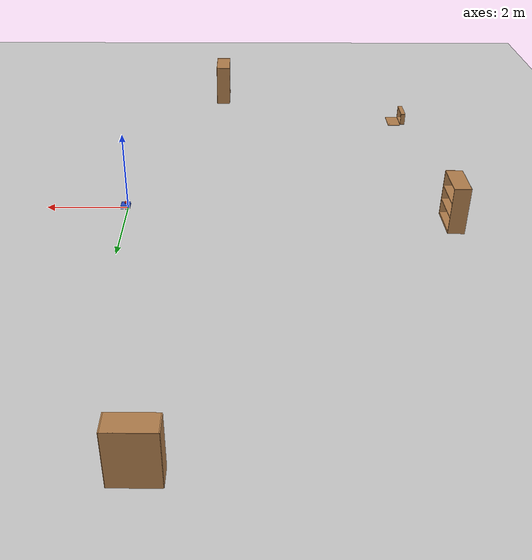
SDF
<sdf version="1.7">
 <world name="default">
  <model name="ground_plane">
   <static>1</static>
   <link name="link">
    <collision name="collision">
     <geometry><plane><normal>0 0 1</normal><size>100 100</size></plane></geometry>
     <surface>
      <contact><collide_bitmask>65535</collide_bitmask></contact>
      <friction><ode><mu>100</mu><mu2>50</mu2></ode></friction>
     </surface>
    </collision>
    <visual name="visual">
     <cast_shadows>0</cast_shadows>
     <geometry><plane><normal>0 0 1</normal><size>100 100</size></plane></geometry>
     <material>
      <script><uri>file://media/materials/scripts/gazebo.material</uri><name>Gazebo/Grey</name></script>
     </material>
    </visual>
   </link>
  </model>
  <model name="my_bot">
   <link name="base_link">
    <inertial>
     <pose>0.058676 0 0.043869 0 -0 0</pose>
     <mass>0.701</mass>
     <inertia>
      <ixx>0.00324724</ixx>
      <ixy>0</ixy>
      <ixz>0.000339625</ixz>
      <iyy>0.00355537</iyy>
      <iyz>0</iyz>
      <izz>0.00467089</izz>
     </inertia>
    </inertial>
    <collision name="base_link_fixed_joint_lump__chassis_collision">
     <pose>0.05251 0 0.037505 0 -0 0</pose>
     <geometry><box><size>0.225 0.225 0.07501</size></box></geometry>
    </collision>
    <collision name="base_link_fixed_joint_lump__caster_wheel_collision_1">
     <pose>0.10876 0 0 0 -0 0</pose>
     <geometry><sphere><radius>0.04</radius></sphere></geometry>
     <surface><friction><ode><mu>0.001</mu><mu2>0.001</mu2></ode></friction></surface>
    </collision>
    <collision name="base_link_fixed_joint_lump__laser_frame_collision_2">
     <pose>0.04001 0 0.12 0 -0 0</pose>
     <geometry><cylinder><length>0.025</length><radius>0.04</radius></cylinder></geometry>
    </collision>
    <collision name="base_link_fixed_joint_lump__imu_link_collision_3">
     <geometry><box><size>0.001 0.001 0.001</size></box></geometry>
    </collision>
    <visual name="base_link_fixed_joint_lump__chassis_visual">
     <pose>0.05251 0 0.037505 0 -0 0</pose>
     <geometry><box><size>0.225 0.225 0.07501</size></box></geometry>
     <material>
      <script><name>Gazebo/Blue</name><uri>file://media/materials/scripts/gazebo.material</uri></script>
     </material>
    </visual>
    <visual name="base_link_fixed_joint_lump__camera_link_visual_1">
     <pose>0.14001 0 0.10285 0 -0 0</pose>
     <geometry><box><size>0.005 0.025 0.025</size></box></geometry>
     <material>
      <script><name>Gazebo/Green</name><uri>file://media/materials/scripts/gazebo.material</uri></script>
     </material>
    </visual>
    <visual name="base_link_fixed_joint_lump__caster_wheel_visual_2">
     <pose>0.10876 0 0 0 -0 0</pose>
     <geometry><sphere><radius>0.04</radius></sphere></geometry>
     <material>
      <script><name>Gazebo/White</name><uri>file://media/materials/scripts/gazebo.material</uri></script>
     </material>
    </visual>
    <visual name="base_link_fixed_joint_lump__laser_frame_visual_3">
     <pose>0.04001 0 0.12 0 -0 0</pose>
     <geometry><cylinder><length>0.025</length><radius>0.04</radius></cylinder></geometry>
     <material>
      <script><name>Gazebo/Red</name><uri>file://media/materials/scripts/gazebo.material</uri></script>
     </material>
    </visual>
    <visual name="base_link_fixed_joint_lump__imu_link_visual_4">
     <geometry><box><size>0.001 0.001 0.001</size></box></geometry>
    </visual>
    <sensor name="camera" type="camera">
     <visualize>1</visualize>
     <update_rate>10</update_rate>
     <camera>
      <horizontal_fov>1.089</horizontal_fov>
      <image><format>R8G8B8</format><width>640</width><height>480</height></image>
      <clip><near>0.05</near><far>8</far></clip>
     </camera>
     <plugin name="camera_controller" filename="libgazebo_ros_camera.so">
      <frame_name>camera_link_optical</frame_name>
     </plugin>
     <pose>0.14001 0 0.10285 0 -0 0</pose>
    </sensor>
    <sensor name="laser" type="ray">
     <visualize>0</visualize>
     <update_rate>10</update_rate>
     <ray>
      <scan>
       <horizontal>
        <samples>360</samples>
        <min_angle>-3.14</min_angle>
        <max_angle>3.14</max_angle>
        <resolution>1</resolution>
       </horizontal>
       <vertical><samples>1</samples><min_angle>0</min_angle><max_angle>0</max_angle></vertical>
      </scan>
      <range><min>0.3</min><max>12</max></range>
     </ray>
     <plugin name="laser_controller" filename="libgazebo_ros_ray_sensor.so">
      <ros><argument>~/out:=scan</argument></ros>
      <output_type>sensor_msgs/LaserScan</output_type>
      <frame_name>laser_frame</frame_name>
     </plugin>
     <pose>0.04001 0 0.12 0 -0 0</pose>
    </sensor>
    <sensor name="imu_sensor" type="imu">
     <plugin name="imu_plugin" filename="libgazebo_ros_imu_sensor.so">
      <initial_orientation_as_reference>0</initial_orientation_as_reference>
      <frame_name>imu_link</frame_name>
      <ros><namespace>/imu</namespace><remapping>~/out:=data</remapping></ros>
     </plugin>
     <always_on>1</always_on>
     <update_rate>100</update_rate>
     <visualize>1</visualize>
     <imu>
      <angular_velocity>
       <x>
        <noise type="gaussian">
         <mean>0</mean>
         <stddev>0.0002</stddev>
         <bias_mean>7.5e-06</bias_mean>
         <bias_stddev>8e-07</bias_stddev>
        </noise>
       </x>
       <y>
        <noise type="gaussian">
         <mean>0</mean>
         <stddev>0.0002</stddev>
         <bias_mean>7.5e-06</bias_mean>
         <bias_stddev>8e-07</bias_stddev>
        </noise>
       </y>
       <z>
        <noise type="gaussian">
         <mean>0</mean>
         <stddev>0.0002</stddev>
         <bias_mean>7.5e-06</bias_mean>
         <bias_stddev>8e-07</bias_stddev>
        </noise>
       </z>
      </angular_velocity>
      <linear_acceleration>
       <x>
        <noise type="gaussian">
         <mean>0</mean>
         <stddev>0.017</stddev>
         <bias_mean>0.1</bias_mean>
         <bias_stddev>0.001</bias_stddev>
        </noise>
       </x>
       <y>
        <noise type="gaussian">
         <mean>0</mean>
         <stddev>0.017</stddev>
         <bias_mean>0.1</bias_mean>
         <bias_stddev>0.001</bias_stddev>
        </noise>
       </y>
       <z>
        <noise type="gaussian">
         <mean>0</mean>
         <stddev>0.017</stddev>
         <bias_mean>0.1</bias_mean>
         <bias_stddev>0.001</bias_stddev>
        </noise>
       </z>
      </linear_acceleration>
     </imu>
    </sensor>
   </link>
   <joint name="left_wheel_joint" type="revolute">
    <pose relative_to="base_link">0 0.11975 0 -1.5708 0 0</pose>
    <parent>base_link</parent>
    <child>left_wheel</child>
    <axis>
     <xyz>0 0 1</xyz>
     <limit><lower>-1e+16</lower><upper>1e+16</upper></limit>
     <dynamics><spring_reference>0</spring_reference><spring_stiffness>0</spring_stiffness></dynamics>
    </axis>
   </joint>
   <link name="left_wheel">
    <pose relative_to="left_wheel_joint">0 0 0 0 -0 0</pose>
    <inertial>
     <mass>0.1</mass>
     <inertia>
      <ixx>4.08333e-05</ixx>
      <ixy>0</ixy>
      <ixz>0</ixz>
      <iyy>4.08333e-05</iyy>
      <iyz>0</iyz>
      <izz>8e-05</izz>
     </inertia>
    </inertial>
    <collision name="left_wheel_collision">
     <geometry><cylinder><length>0.01</length><radius>0.04</radius></cylinder></geometry>
    </collision>
    <visual name="left_wheel_visual">
     <geometry><cylinder><length>0.01</length><radius>0.04</radius></cylinder></geometry>
     <material>
      <script><name>Gazebo/Black</name><uri>file://media/materials/scripts/gazebo.material</uri></script>
     </material>
    </visual>
   </link>
   <joint name="right_wheel_joint" type="revolute">
    <pose relative_to="base_link">0 -0.11975 0 1.5708 -0 0</pose>
    <parent>base_link</parent>
    <child>right_wheel</child>
    <axis>
     <xyz>0 0 -1</xyz>
     <limit><lower>-1e+16</lower><upper>1e+16</upper></limit>
     <dynamics><spring_reference>0</spring_reference><spring_stiffness>0</spring_stiffness></dynamics>
    </axis>
   </joint>
   <link name="right_wheel">
    <pose relative_to="right_wheel_joint">0 0 0 0 -0 0</pose>
    <inertial>
     <mass>0.1</mass>
     <inertia>
      <ixx>4.08333e-05</ixx>
      <ixy>0</ixy>
      <ixz>0</ixz>
      <iyy>4.08333e-05</iyy>
      <iyz>0</iyz>
      <izz>8e-05</izz>
     </inertia>
    </inertial>
    <collision name="right_wheel_collision">
     <geometry><cylinder><length>0.01</length><radius>0.04</radius></cylinder></geometry>
    </collision>
    <visual name="right_wheel_visual">
     <geometry><cylinder><length>0.01</length><radius>0.04</radius></cylinder></geometry>
     <material>
      <script><name>Gazebo/Black</name><uri>file://media/materials/scripts/gazebo.material</uri></script>
     </material>
    </visual>
   </link>
   <static>0</static>
   <plugin name="gazebo_ros2_control" filename="libgazebo_ros2_control.so">
    <parameters>/home/praveenrav702/comp_ws/install/autonomous_diffdrive_robot/share/autonomous_diffdrive_robot/config/my_controllers.yaml</parameters>
    <parameters>/home/praveenrav702/comp_ws/install/autonomous_diffdrive_robot/share/autonomous_diffdrive_robot/config/gaz_ros2_ctl_use_sim.yaml</parameters>
   </plugin>
   <pose>0.002327 0.00019 0.04 0 -0 0.021184</pose>
  </model>
  <model name="Bookshelf">
   <static>1</static>
   <link name="link">
    <inertial><mass>1</mass></inertial>
    <collision name="back">
     <pose>0 0.005 0.6 0 -0 0</pose>
     <geometry><box><size>0.9 0.01 1.2</size></box></geometry>
    </collision>
    <visual name="visual1">
     <pose>0 0.005 0.6 0 -0 0</pose>
     <geometry><box><size>0.9 0.01 1.2</size></box></geometry>
     <material>
      <diffuse>1 1 1 1</diffuse>
      <script><uri>file://media/materials/scripts/gazebo.material</uri><name>Gazebo/Wood</name></script>
      <pbr>
       <metal>
        <albedo_map>https://fuel.ignitionrobotics.org/1.0/openrobotics/models/bookshelf/3/files/bookshelf_diffuse.jpg</albedo_map>
       </metal>
      </pbr>
     </material>
    </visual>
    <collision name="left_side">
     <pose>0.45 -0.195 0.6 0 -0 0</pose>
     <geometry><box><size>0.02 0.4 1.2</size></box></geometry>
    </collision>
    <visual name="visual2">
     <pose>0.45 -0.195 0.6 0 -0 0</pose>
     <geometry><box><size>0.02 0.4 1.2</size></box></geometry>
     <material>
      <diffuse>1 1 1 1</diffuse>
      <script><uri>file://media/materials/scripts/gazebo.material</uri><name>Gazebo/Wood</name></script>
      <pbr>
       <metal>
        <albedo_map>https://fuel.ignitionrobotics.org/1.0/openrobotics/models/bookshelf/3/files/bookshelf_diffuse.jpg</albedo_map>
       </metal>
      </pbr>
     </material>
    </visual>
    <collision name="right_side">
     <pose>-0.45 -0.195 0.6 0 -0 0</pose>
     <geometry><box><size>0.02 0.4 1.2</size></box></geometry>
    </collision>
    <visual name="visual3">
     <pose>-0.45 -0.195 0.6 0 -0 0</pose>
     <geometry><box><size>0.02 0.4 1.2</size></box></geometry>
     <material>
      <diffuse>1 1 1 1</diffuse>
      <script><uri>file://media/materials/scripts/gazebo.material</uri><name>Gazebo/Wood</name></script>
      <pbr>
       <metal>
        <albedo_map>https://fuel.ignitionrobotics.org/1.0/openrobotics/models/bookshelf/3/files/bookshelf_diffuse.jpg</albedo_map>
       </metal>
      </pbr>
     </material>
    </visual>
    <collision name="bottom">
     <pose>0 -0.195 0.03 0 -0 0</pose>
     <geometry><box><size>0.88 0.4 0.06</size></box></geometry>
    </collision>
    <visual name="visual4">
     <pose>0 -0.195 0.03 0 -0 0</pose>
     <geometry><box><size>0.88 0.4 0.06</size></box></geometry>
     <material>
      <diffuse>1 1 1 1</diffuse>
      <script><uri>file://media/materials/scripts/gazebo.material</uri><name>Gazebo/Wood</name></script>
      <pbr>
       <metal>
        <albedo_map>https://fuel.ignitionrobotics.org/1.0/openrobotics/models/bookshelf/3/files/bookshelf_diffuse.jpg</albedo_map>
       </metal>
      </pbr>
     </material>
    </visual>
    <collision name="top">
     <pose>0 -0.195 1.19 0 -0 0</pose>
     <geometry><box><size>0.88 0.4 0.02</size></box></geometry>
    </collision>
    <visual name="visual5">
     <pose>0 -0.195 1.19 0 -0 0</pose>
     <geometry><box><size>0.88 0.4 0.02</size></box></geometry>
     <material>
      <diffuse>1 1 1 1</diffuse>
      <script><uri>file://media/materials/scripts/gazebo.material</uri><name>Gazebo/Wood</name></script>
      <pbr>
       <metal>
        <albedo_map>https://fuel.ignitionrobotics.org/1.0/openrobotics/models/bookshelf/3/files/bookshelf_diffuse.jpg</albedo_map>
       </metal>
      </pbr>
     </material>
    </visual>
    <collision name="low_shelf">
     <pose>0 -0.195 0.43 0 -0 0</pose>
     <geometry><box><size>0.88 0.4 0.02</size></box></geometry>
    </collision>
    <visual name="visual6">
     <pose>0 -0.195 0.43 0 -0 0</pose>
     <geometry><box><size>0.88 0.4 0.02</size></box></geometry>
     <material>
      <diffuse>1 1 1 1</diffuse>
      <script><uri>file://media/materials/scripts/gazebo.material</uri><name>Gazebo/Wood</name></script>
      <pbr>
       <metal>
        <albedo_map>https://fuel.ignitionrobotics.org/1.0/openrobotics/models/bookshelf/3/files/bookshelf_diffuse.jpg</albedo_map>
       </metal>
      </pbr>
     </material>
    </visual>
    <collision name="high_shelf">
     <pose>0 -0.195 0.8 0 -0 0</pose>
     <geometry><box><size>0.88 0.4 0.02</size></box></geometry>
    </collision>
    <visual name="visual7">
     <pose>0 -0.195 0.8 0 -0 0</pose>
     <geometry><box><size>0.88 0.4 0.02</size></box></geometry>
     <material>
      <diffuse>1 1 1 1</diffuse>
      <script><uri>file://media/materials/scripts/gazebo.material</uri><name>Gazebo/Wood</name></script>
      <pbr>
       <metal>
        <albedo_map>https://fuel.ignitionrobotics.org/1.0/openrobotics/models/bookshelf/3/files/bookshelf_diffuse.jpg</albedo_map>
       </metal>
      </pbr>
     </material>
    </visual>
   </link>
   <pose>-2 -7 0 0 0 -1.57079</pose>
  </model>
  <model name="bookshelf">
   <static>1</static>
   <link name="link">
    <inertial><mass>1</mass></inertial>
    <collision name="back">
     <pose>0 0.005 0.6 0 -0 0</pose>
     <geometry><box><size>0.9 0.01 1.2</size></box></geometry>
    </collision>
    <visual name="visual1">
     <pose>0 0.005 0.6 0 -0 0</pose>
     <geometry><box><size>0.9 0.01 1.2</size></box></geometry>
     <material>
      <script><uri>file://media/materials/scripts/gazebo.material</uri><name>Gazebo/Wood</name></script>
     </material>
    </visual>
    <collision name="left_side">
     <pose>0.45 -0.195 0.6 0 -0 0</pose>
     <geometry><box><size>0.02 0.4 1.2</size></box></geometry>
    </collision>
    <visual name="visual2">
     <pose>0.45 -0.195 0.6 0 -0 0</pose>
     <geometry><box><size>0.02 0.4 1.2</size></box></geometry>
     <material>
      <script><uri>file://media/materials/scripts/gazebo.material</uri><name>Gazebo/Wood</name></script>
     </material>
    </visual>
    <collision name="right_side">
     <pose>-0.45 -0.195 0.6 0 -0 0</pose>
     <geometry><box><size>0.02 0.4 1.2</size></box></geometry>
    </collision>
    <visual name="visual3">
     <pose>-0.45 -0.195 0.6 0 -0 0</pose>
     <geometry><box><size>0.02 0.4 1.2</size></box></geometry>
     <material>
      <script><uri>file://media/materials/scripts/gazebo.material</uri><name>Gazebo/Wood</name></script>
     </material>
    </visual>
    <collision name="bottom">
     <pose>0 -0.195 0.03 0 -0 0</pose>
     <geometry><box><size>0.88 0.4 0.06</size></box></geometry>
    </collision>
    <visual name="visual4">
     <pose>0 -0.195 0.03 0 -0 0</pose>
     <geometry><box><size>0.88 0.4 0.06</size></box></geometry>
     <material>
      <script><uri>file://media/materials/scripts/gazebo.material</uri><name>Gazebo/Wood</name></script>
     </material>
    </visual>
    <collision name="top">
     <pose>0 -0.195 1.19 0 -0 0</pose>
     <geometry><box><size>0.88 0.4 0.02</size></box></geometry>
    </collision>
    <visual name="visual5">
     <pose>0 -0.195 1.19 0 -0 0</pose>
     <geometry><box><size>0.88 0.4 0.02</size></box></geometry>
     <material>
      <script><uri>file://media/materials/scripts/gazebo.material</uri><name>Gazebo/Wood</name></script>
     </material>
    </visual>
    <collision name="low_shelf">
     <pose>0 -0.195 0.43 0 -0 0</pose>
     <geometry><box><size>0.88 0.4 0.02</size></box></geometry>
    </collision>
    <visual name="visual6">
     <pose>0 -0.195 0.43 0 -0 0</pose>
     <geometry><box><size>0.88 0.4 0.02</size></box></geometry>
     <material>
      <script><uri>file://media/materials/scripts/gazebo.material</uri><name>Gazebo/Wood</name></script>
     </material>
    </visual>
    <collision name="high_shelf">
     <pose>0 -0.195 0.8 0 -0 0</pose>
     <geometry><box><size>0.88 0.4 0.02</size></box></geometry>
    </collision>
    <visual name="visual7">
     <pose>0 -0.195 0.8 0 -0 0</pose>
     <geometry><box><size>0.88 0.4 0.02</size></box></geometry>
     <material>
      <script><uri>file://media/materials/scripts/gazebo.material</uri><name>Gazebo/Wood</name></script>
     </material>
    </visual>
   </link>
   <pose>-8.06929 0.669362 0 0 -0 1.57</pose>
  </model>
  <model name="wooden_case">
   <link name="base">
    <pose>0 0 0.024 0 -0 0</pose>
    <inertial>
     <pose>-0.022184 0 0.171592 0 -0 0</pose>
     <mass>3.96264</mass>
     <inertia>
      <ixx>0.213536</ixx>
      <ixy>0</ixy>
      <ixz>0.000779377</ixz>
      <iyy>0.0708943</iyy>
      <iyz>0</iyz>
      <izz>0.154604</izz>
     </inertia>
    </inertial>
    <collision name="collision_back">
     <pose>-0.053975 0 0.1778 0 -0 0</pose>
     <geometry><box><size>0.01905 0.5461 0.3175</size></box></geometry>
     <surface>
      <contact>
       <poissons_ratio>0.347</poissons_ratio>
       <elastic_modulus>8.8e+09</elastic_modulus>
       <ode><kp>100000</kp><kd>100</kd><max_vel>100</max_vel><min_depth>0.001</min_depth></ode>
      </contact>
      <friction>
       <torsional>
        <coefficient>1</coefficient>
        <use_patch_radius>0</use_patch_radius>
        <surface_radius>0.01</surface_radius>
       </torsional>
      </friction>
     </surface>
    </collision>
    <visual name="visual_back">
     <pose>-0.053975 0 0.1778 0 -0 0</pose>
     <geometry><box><size>0.01905 0.5461 0.3175</size></box></geometry>
     <material>
      <script><uri>file://media/materials/scripts/gazebo.material</uri><name>Gazebo/Wood</name></script>
     </material>
    </visual>
    <collision name="collision_bottom">
     <pose>0 0 0.009525 0 -0 0</pose>
     <geometry><box><size>0.127 0.5842 0.01905</size></box></geometry>
     <surface>
      <contact>
       <poissons_ratio>0.347</poissons_ratio>
       <elastic_modulus>8.8e+09</elastic_modulus>
       <ode><kp>100000</kp><kd>100</kd><max_vel>100</max_vel><min_depth>0.001</min_depth></ode>
      </contact>
      <friction>
       <torsional>
        <coefficient>1</coefficient>
        <use_patch_radius>0</use_patch_radius>
        <surface_radius>0.01</surface_radius>
       </torsional>
      </friction>
     </surface>
    </collision>
    <visual name="visual_bottom">
     <pose>0 0 0.009525 0 -0 0</pose>
     <geometry><box><size>0.127 0.5842 0.01905</size></box></geometry>
     <material>
      <script><uri>file://media/materials/scripts/gazebo.material</uri><name>Gazebo/Wood</name></script>
     </material>
    </visual>
    <collision name="collision_top">
     <pose>0 0 0.346075 0 -0 0</pose>
     <geometry><box><size>0.127 0.5842 0.01905</size></box></geometry>
     <surface>
      <contact>
       <poissons_ratio>0.347</poissons_ratio>
       <elastic_modulus>8.8e+09</elastic_modulus>
       <ode><kp>100000</kp><kd>100</kd><max_vel>100</max_vel><min_depth>0.001</min_depth></ode>
      </contact>
      <friction>
       <torsional>
        <coefficient>1</coefficient>
        <use_patch_radius>0</use_patch_radius>
        <surface_radius>0.01</surface_radius>
       </torsional>
      </friction>
     </surface>
    </collision>
    <visual name="visual_top">
     <pose>0 0 0.346075 0 -0 0</pose>
     <geometry><box><size>0.127 0.5842 0.01905</size></box></geometry>
     <material>
      <script><uri>file://media/materials/scripts/gazebo.material</uri><name>Gazebo/Wood</name></script>
     </material>
    </visual>
    <collision name="collision_left">
     <pose>0 -0.282575 0.1778 0 -0 0</pose>
     <geometry><box><size>0.127 0.01905 0.3175</size></box></geometry>
     <surface>
      <contact>
       <poissons_ratio>0.347</poissons_ratio>
       <elastic_modulus>8.8e+09</elastic_modulus>
       <ode><kp>100000</kp><kd>100</kd><max_vel>100</max_vel><min_depth>0.001</min_depth></ode>
      </contact>
      <friction>
       <torsional>
        <coefficient>1</coefficient>
        <use_patch_radius>0</use_patch_radius>
        <surface_radius>0.01</surface_radius>
       </torsional>
      </friction>
     </surface>
    </collision>
    <visual name="visual_left">
     <pose>0 -0.282575 0.1778 0 -0 0</pose>
     <geometry><box><size>0.127 0.01905 0.3175</size></box></geometry>
     <material>
      <script><uri>file://media/materials/scripts/gazebo.material</uri><name>Gazebo/Wood</name></script>
     </material>
    </visual>
    <collision name="collision_right">
     <pose>0 0.282575 0.1778 0 -0 0</pose>
     <geometry><box><size>0.127 0.01905 0.3175</size></box></geometry>
     <surface>
      <contact>
       <poissons_ratio>0.347</poissons_ratio>
       <elastic_modulus>8.8e+09</elastic_modulus>
       <ode><kp>100000</kp><kd>100</kd><max_vel>100</max_vel><min_depth>0.001</min_depth></ode>
      </contact>
      <friction>
       <torsional>
        <coefficient>1</coefficient>
        <use_patch_radius>0</use_patch_radius>
        <surface_radius>0.01</surface_radius>
       </torsional>
      </friction>
     </surface>
    </collision>
    <visual name="visual_right">
     <pose>0 0.282575 0.1778 0 -0 0</pose>
     <geometry><box><size>0.127 0.01905 0.3175</size></box></geometry>
     <material>
      <script><uri>file://media/materials/scripts/gazebo.material</uri><name>Gazebo/Wood</name></script>
     </material>
    </visual>
    <collision name="collision_block_left">
     <pose>0.0095 -0.2151 -0.012 0 -0 0</pose>
     <geometry><box><size>0.108 0.05 0.024</size></box></geometry>
     <surface>
      <contact>
       <poissons_ratio>0.347</poissons_ratio>
       <elastic_modulus>8.8e+09</elastic_modulus>
       <ode><kp>100000</kp><kd>100</kd><max_vel>100</max_vel><min_depth>0.001</min_depth></ode>
      </contact>
      <friction>
       <torsional>
        <coefficient>1</coefficient>
        <use_patch_radius>0</use_patch_radius>
        <surface_radius>0.01</surface_radius>
       </torsional>
      </friction>
     </surface>
    </collision>
    <visual name="visual_block_left">
     <pose>0.0095 -0.2151 -0.012 0 -0 0</pose>
     <geometry><box><size>0.108 0.05 0.024</size></box></geometry>
     <material>
      <script><uri>file://media/materials/scripts/gazebo.material</uri><name>Gazebo/Wood</name></script>
     </material>
    </visual>
    <collision name="collision_block_right">
     <pose>0.0095 0.2151 -0.012 0 -0 0</pose>
     <geometry><box><size>0.108 0.05 0.024</size></box></geometry>
     <surface>
      <contact>
       <poissons_ratio>0.347</poissons_ratio>
       <elastic_modulus>8.8e+09</elastic_modulus>
       <ode><kp>100000</kp><kd>100</kd><max_vel>100</max_vel><min_depth>0.001</min_depth></ode>
      </contact>
      <friction>
       <torsional>
        <coefficient>1</coefficient>
        <use_patch_radius>0</use_patch_radius>
        <surface_radius>0.01</surface_radius>
       </torsional>
      </friction>
     </surface>
    </collision>
    <visual name="visual_block_right">
     <pose>0.0095 0.2151 -0.012 0 -0 0</pose>
     <geometry><box><size>0.108 0.05 0.024</size></box></geometry>
     <material>
      <script><uri>file://media/materials/scripts/gazebo.material</uri><name>Gazebo/Wood</name></script>
     </material>
    </visual>
   </link>
   <link name="lid">
    <pose>0.243775 0 0.009525 0 -0 0</pose>
    <inertial>
     <mass>1.97874</mass>
     <inertia>
      <ixx>0.0563367</ixx>
      <ixy>0</ixy>
      <ixz>0</ixz>
      <iyy>0.020911</iyy>
      <iyz>0</iyz>
      <izz>0.0771281</izz>
     </inertia>
    </inertial>
    <collision name="collision">
     <geometry><box><size>0.3556 0.5842 0.01905</size></box></geometry>
     <surface>
      <contact>
       <poissons_ratio>0.347</poissons_ratio>
       <elastic_modulus>8.8e+09</elastic_modulus>
       <ode><kp>100000</kp><kd>100</kd><max_vel>100</max_vel><min_depth>0.001</min_depth></ode>
      </contact>
      <friction>
       <torsional>
        <coefficient>1</coefficient>
        <use_patch_radius>0</use_patch_radius>
        <surface_radius>0.01</surface_radius>
       </torsional>
      </friction>
     </surface>
    </collision>
    <visual name="visual">
     <geometry><box><size>0.3556 0.5842 0.01905</size></box></geometry>
     <material>
      <script><uri>file://media/materials/scripts/gazebo.material</uri><name>Gazebo/Wood</name></script>
     </material>
    </visual>
    <visual name="tee_nut_1">
     <pose>0.122 -0.216 0 0 -0 0</pose>
     <geometry><cylinder><radius>0.00635</radius><length>0.0192405</length></cylinder></geometry>
     <material>
      <script><uri>file://media/materials/scripts/gazebo.material</uri><name>Gazebo/Grey</name></script>
     </material>
    </visual>
    <visual name="tee_nut_2">
     <pose>0.122 -0.088 0 0 -0 0</pose>
     <geometry><cylinder><radius>0.00635</radius><length>0.0192405</length></cylinder></geometry>
     <material>
      <script><uri>file://media/materials/scripts/gazebo.material</uri><name>Gazebo/Grey</name></script>
     </material>
    </visual>
    <visual name="tee_nut_3">
     <pose>0.122 0.088 0 0 -0 0</pose>
     <geometry><cylinder><radius>0.00635</radius><length>0.0192405</length></cylinder></geometry>
     <material>
      <script><uri>file://media/materials/scripts/gazebo.material</uri><name>Gazebo/Grey</name></script>
     </material>
    </visual>
    <visual name="tee_nut_4">
     <pose>0.122 0.216 0 0 -0 0</pose>
     <geometry><cylinder><radius>0.00635</radius><length>0.0192405</length></cylinder></geometry>
     <material>
      <script><uri>file://media/materials/scripts/gazebo.material</uri><name>Gazebo/Grey</name></script>
     </material>
    </visual>
   </link>
   <joint name="lid_hinge" type="revolute">
    <pose>-0.1778 0 0.01905 0 -0 0</pose>
    <parent>base</parent>
    <child>lid</child>
    <axis>
     <xyz>0 1 0</xyz>
     <limit><upper>0.523599</upper><lower>-1.5708</lower></limit>
     <dynamics><spring_reference>0</spring_reference><spring_stiffness>0</spring_stiffness></dynamics>
    </axis>
   </joint>
   <pose>-7.6787 -5.18209 -0.001057 0 -0.000429 0</pose>
  </model>
  <model name="bookshelf_0">
   <static>1</static>
   <link name="link">
    <inertial><mass>1</mass></inertial>
    <collision name="back">
     <pose>0 0.005 0.6 0 -0 0</pose>
     <geometry><box><size>0.9 0.01 1.2</size></box></geometry>
    </collision>
    <visual name="visual1">
     <pose>0 0.005 0.6 0 -0 0</pose>
     <geometry><box><size>0.9 0.01 1.2</size></box></geometry>
     <material>
      <script><uri>file://media/materials/scripts/gazebo.material</uri><name>Gazebo/Wood</name></script>
     </material>
    </visual>
    <collision name="left_side">
     <pose>0.45 -0.195 0.6 0 -0 0</pose>
     <geometry><box><size>0.02 0.4 1.2</size></box></geometry>
    </collision>
    <visual name="visual2">
     <pose>0.45 -0.195 0.6 0 -0 0</pose>
     <geometry><box><size>0.02 0.4 1.2</size></box></geometry>
     <material>
      <script><uri>file://media/materials/scripts/gazebo.material</uri><name>Gazebo/Wood</name></script>
     </material>
    </visual>
    <collision name="right_side">
     <pose>-0.45 -0.195 0.6 0 -0 0</pose>
     <geometry><box><size>0.02 0.4 1.2</size></box></geometry>
    </collision>
    <visual name="visual3">
     <pose>-0.45 -0.195 0.6 0 -0 0</pose>
     <geometry><box><size>0.02 0.4 1.2</size></box></geometry>
     <material>
      <script><uri>file://media/materials/scripts/gazebo.material</uri><name>Gazebo/Wood</name></script>
     </material>
    </visual>
    <collision name="bottom">
     <pose>0 -0.195 0.03 0 -0 0</pose>
     <geometry><box><size>0.88 0.4 0.06</size></box></geometry>
    </collision>
    <visual name="visual4">
     <pose>0 -0.195 0.03 0 -0 0</pose>
     <geometry><box><size>0.88 0.4 0.06</size></box></geometry>
     <material>
      <script><uri>file://media/materials/scripts/gazebo.material</uri><name>Gazebo/Wood</name></script>
     </material>
    </visual>
    <collision name="top">
     <pose>0 -0.195 1.19 0 -0 0</pose>
     <geometry><box><size>0.88 0.4 0.02</size></box></geometry>
    </collision>
    <visual name="visual5">
     <pose>0 -0.195 1.19 0 -0 0</pose>
     <geometry><box><size>0.88 0.4 0.02</size></box></geometry>
     <material>
      <script><uri>file://media/materials/scripts/gazebo.material</uri><name>Gazebo/Wood</name></script>
     </material>
    </visual>
    <collision name="low_shelf">
     <pose>0 -0.195 0.43 0 -0 0</pose>
     <geometry><box><size>0.88 0.4 0.02</size></box></geometry>
    </collision>
    <visual name="visual6">
     <pose>0 -0.195 0.43 0 -0 0</pose>
     <geometry><box><size>0.88 0.4 0.02</size></box></geometry>
     <material>
      <script><uri>file://media/materials/scripts/gazebo.material</uri><name>Gazebo/Wood</name></script>
     </material>
    </visual>
    <collision name="high_shelf">
     <pose>0 -0.195 0.8 0 -0 0</pose>
     <geometry><box><size>0.88 0.4 0.02</size></box></geometry>
    </collision>
    <visual name="visual7">
     <pose>0 -0.195 0.8 0 -0 0</pose>
     <geometry><box><size>0.88 0.4 0.02</size></box></geometry>
     <material>
      <script><uri>file://media/materials/scripts/gazebo.material</uri><name>Gazebo/Wood</name></script>
     </material>
    </visual>
   </link>
   <pose>-1.2384 8.25374 0 0 -0 0</pose>
  </model>
 </world>
</sdf>
